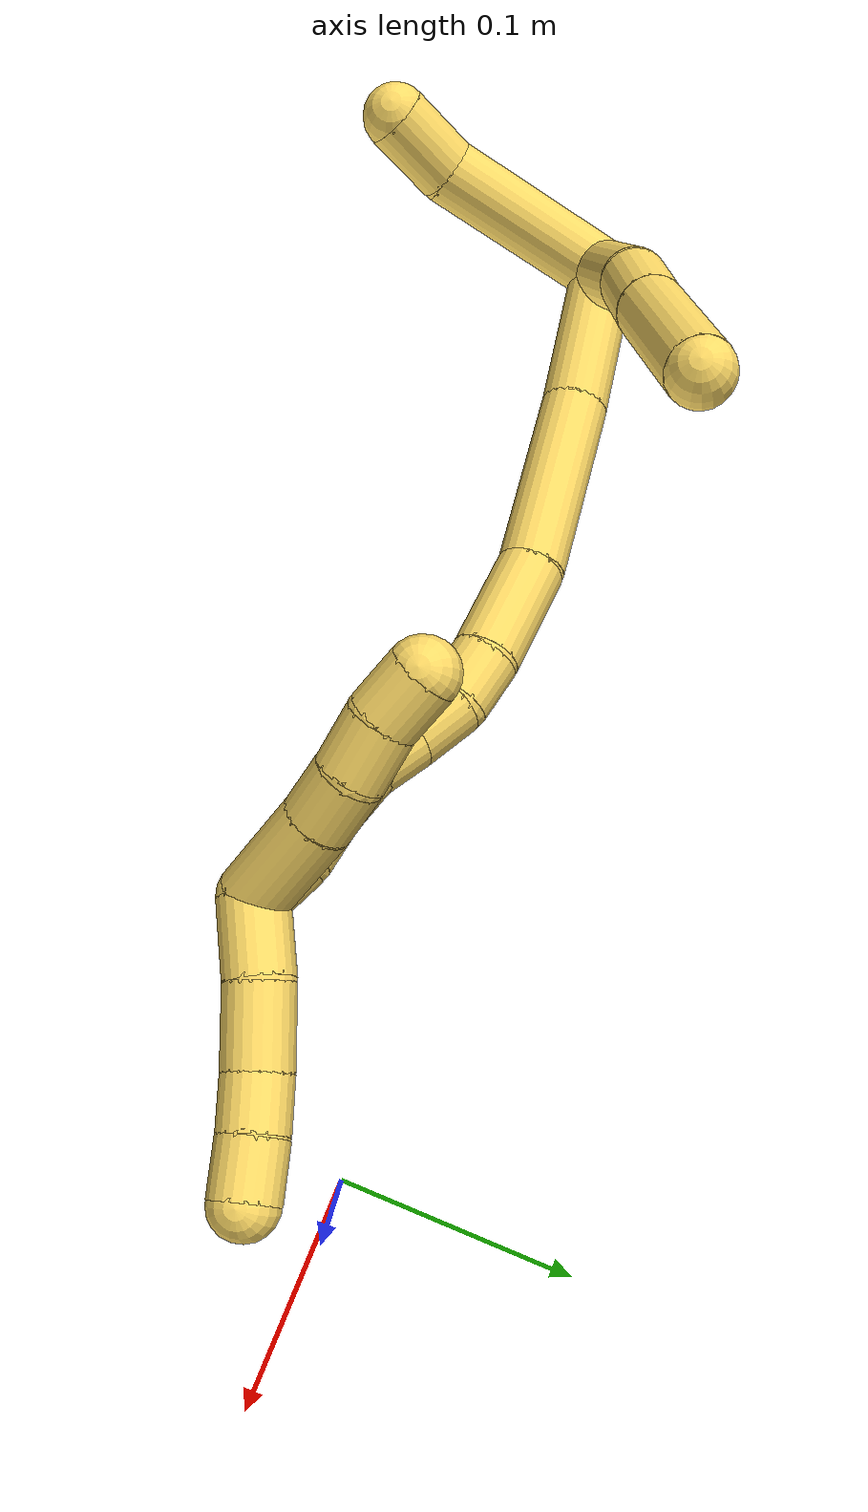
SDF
<sdf version="1.7">
 <world name="default">
  <model name="5">
   <static>0</static>
   <link name="5">
    <collision name="collision-cylinder-e_1_2_8">
     <pose>0.014461 -0.001479 -0.027099 3.08707 0.489576 2.92413</pose>
     <geometry><cylinder><radius>0.0125</radius><length>0.061504</length></cylinder></geometry>
     <surface>
      <friction><ode><mu>1.16</mu><mu2>1.16</mu2><slip1>0</slip1><slip2>0</slip2></ode></friction>
      <contact><ode><kp>1e+06</kp><kd>1</kd><max_vel>0</max_vel><min_depth>0.001</min_depth></ode></contact>
     </surface>
    </collision>
    <visual name="visual-cylinder-e_1_2_8">
     <pose>0.014461 -0.001479 -0.027099 3.08707 0.489576 2.92413</pose>
     <geometry><cylinder><radius>0.0125</radius><length>0.061504</length></cylinder></geometry>
     <material><ambient>1 0.858824 0.4 1</ambient></material>
    </visual>
    <collision name="collision-cylinder-e_2_8_9">
     <pose>0.038945 -0.002596 -0.06533 -3.10909 0.73279 -3.05692</pose>
     <geometry><cylinder><radius>0.0125</radius><length>0.029967</length></cylinder></geometry>
     <surface>
      <friction><ode><mu>1.16</mu><mu2>1.16</mu2><slip1>0</slip1><slip2>0</slip2></ode></friction>
      <contact><ode><kp>1e+06</kp><kd>1</kd><max_vel>0</max_vel><min_depth>0.001</min_depth></ode></contact>
     </surface>
    </collision>
    <visual name="visual-cylinder-e_2_8_9">
     <pose>0.038945 -0.002596 -0.06533 -3.10909 0.73279 -3.05692</pose>
     <geometry><cylinder><radius>0.0125</radius><length>0.029967</length></cylinder></geometry>
     <material><ambient>1 0.858824 0.4 1</ambient></material>
    </visual>
    <collision name="collision-cylinder-e_3_9_6">
     <pose>0.06909 -0.003161 -0.09769 3.09798 0.75816 3.03219</pose>
     <geometry><cylinder><radius>0.0125</radius><length>0.058529</length></cylinder></geometry>
     <surface>
      <friction><ode><mu>1.16</mu><mu2>1.16</mu2><slip1>0</slip1><slip2>0</slip2></ode></friction>
      <contact><ode><kp>1e+06</kp><kd>1</kd><max_vel>0</max_vel><min_depth>0.001</min_depth></ode></contact>
     </surface>
    </collision>
    <visual name="visual-cylinder-e_3_9_6">
     <pose>0.06909 -0.003161 -0.09769 3.09798 0.75816 3.03219</pose>
     <geometry><cylinder><radius>0.0125</radius><length>0.058529</length></cylinder></geometry>
     <material><ambient>1 0.858824 0.4 1</ambient></material>
    </visual>
    <collision name="collision-cylinder-e_1_2_10">
     <pose>-0.024351 0.022258 -0.014555 -2.14993 -0.741373 1.2461</pose>
     <geometry><cylinder><radius>0.0125</radius><length>0.072118</length></cylinder></geometry>
     <surface>
      <friction><ode><mu>1.16</mu><mu2>1.16</mu2><slip1>0</slip1><slip2>0</slip2></ode></friction>
      <contact><ode><kp>1e+06</kp><kd>1</kd><max_vel>0</max_vel><min_depth>0.001</min_depth></ode></contact>
     </surface>
    </collision>
    <visual name="visual-cylinder-e_1_2_10">
     <pose>-0.024351 0.022258 -0.014555 -2.14993 -0.741373 1.2461</pose>
     <geometry><cylinder><radius>0.0125</radius><length>0.072118</length></cylinder></geometry>
     <material><ambient>1 0.858824 0.4 1</ambient></material>
    </visual>
    <collision name="collision-cylinder-e_2_10_5">
     <pose>-0.058349 0.050426 -0.037257 -2.51407 -0.76431 1.7832</pose>
     <geometry><cylinder><radius>0.0125</radius><length>0.027882</length></cylinder></geometry>
     <surface>
      <friction><ode><mu>1.16</mu><mu2>1.16</mu2><slip1>0</slip1><slip2>0</slip2></ode></friction>
      <contact><ode><kp>1e+06</kp><kd>1</kd><max_vel>0</max_vel><min_depth>0.001</min_depth></ode></contact>
     </surface>
    </collision>
    <visual name="visual-cylinder-e_2_10_5">
     <pose>-0.058349 0.050426 -0.037257 -2.51407 -0.76431 1.7832</pose>
     <geometry><cylinder><radius>0.0125</radius><length>0.027882</length></cylinder></geometry>
     <material><ambient>1 0.858824 0.4 1</ambient></material>
    </visual>
    <collision name="collision-cylinder-e_1_2_11">
     <pose>0.026166 0.015204 -0.007874 -2.04863 0.991357 -1.45332</pose>
     <geometry><cylinder><radius>0.0125</radius><length>0.06254</length></cylinder></geometry>
     <surface>
      <friction><ode><mu>1.16</mu><mu2>1.16</mu2><slip1>0</slip1><slip2>0</slip2></ode></friction>
      <contact><ode><kp>1e+06</kp><kd>1</kd><max_vel>0</max_vel><min_depth>0.001</min_depth></ode></contact>
     </surface>
    </collision>
    <visual name="visual-cylinder-e_1_2_11">
     <pose>0.026166 0.015204 -0.007874 -2.04863 0.991357 -1.45332</pose>
     <geometry><cylinder><radius>0.0125</radius><length>0.06254</length></cylinder></geometry>
     <material><ambient>1 0.858824 0.4 1</ambient></material>
    </visual>
    <collision name="collision-cylinder-e_2_11_12">
     <pose>0.081749 0.048922 -0.0276 -2.14026 0.929032 -1.48293</pose>
     <geometry><cylinder><radius>0.0125</radius><length>0.073447</length></cylinder></geometry>
     <surface>
      <friction><ode><mu>1.16</mu><mu2>1.16</mu2><slip1>0</slip1><slip2>0</slip2></ode></friction>
      <contact><ode><kp>1e+06</kp><kd>1</kd><max_vel>0</max_vel><min_depth>0.001</min_depth></ode></contact>
     </surface>
    </collision>
    <visual name="visual-cylinder-e_2_11_12">
     <pose>0.081749 0.048922 -0.0276 -2.14026 0.929032 -1.48293</pose>
     <geometry><cylinder><radius>0.0125</radius><length>0.073447</length></cylinder></geometry>
     <material><ambient>1 0.858824 0.4 1</ambient></material>
    </visual>
    <collision name="collision-cylinder-e_3_12_13">
     <pose>0.125232 0.080481 -0.047337 -2.11439 0.745308 -1.21203</pose>
     <geometry><cylinder><radius>0.0125</radius><length>0.041481</length></cylinder></geometry>
     <surface>
      <friction><ode><mu>1.16</mu><mu2>1.16</mu2><slip1>0</slip1><slip2>0</slip2></ode></friction>
      <contact><ode><kp>1e+06</kp><kd>1</kd><max_vel>0</max_vel><min_depth>0.001</min_depth></ode></contact>
     </surface>
    </collision>
    <visual name="visual-cylinder-e_3_12_13">
     <pose>0.125232 0.080481 -0.047337 -2.11439 0.745308 -1.21203</pose>
     <geometry><cylinder><radius>0.0125</radius><length>0.041481</length></cylinder></geometry>
     <material><ambient>1 0.858824 0.4 1</ambient></material>
    </visual>
    <collision name="collision-cylinder-e_4_13_14">
     <pose>0.145372 0.10107 -0.058246 -1.95227 0.641674 -0.913421</pose>
     <geometry><cylinder><radius>0.0125</radius><length>0.020294</length></cylinder></geometry>
     <surface>
      <friction><ode><mu>1.16</mu><mu2>1.16</mu2><slip1>0</slip1><slip2>0</slip2></ode></friction>
      <contact><ode><kp>1e+06</kp><kd>1</kd><max_vel>0</max_vel><min_depth>0.001</min_depth></ode></contact>
     </surface>
    </collision>
    <visual name="visual-cylinder-e_4_13_14">
     <pose>0.145372 0.10107 -0.058246 -1.95227 0.641674 -0.913421</pose>
     <geometry><cylinder><radius>0.0125</radius><length>0.020294</length></cylinder></geometry>
     <material><ambient>1 0.858824 0.4 1</ambient></material>
    </visual>
    <collision name="collision-cylinder-e_5_14_15">
     <pose>0.155108 0.118395 -0.064369 -1.87742 0.342972 -0.464452</pose>
     <geometry><cylinder><radius>0.0125</radius><length>0.021787</length></cylinder></geometry>
     <surface>
      <friction><ode><mu>1.16</mu><mu2>1.16</mu2><slip1>0</slip1><slip2>0</slip2></ode></friction>
      <contact><ode><kp>1e+06</kp><kd>1</kd><max_vel>0</max_vel><min_depth>0.001</min_depth></ode></contact>
     </surface>
    </collision>
    <visual name="visual-cylinder-e_5_14_15">
     <pose>0.155108 0.118395 -0.064369 -1.87742 0.342972 -0.464452</pose>
     <geometry><cylinder><radius>0.0125</radius><length>0.021787</length></cylinder></geometry>
     <material><ambient>1 0.858824 0.4 1</ambient></material>
    </visual>
    <collision name="collision-cylinder-e_6_15_16">
     <pose>0.161794 0.136358 -0.072495 -2.12196 0.304907 -0.53636</pose>
     <geometry><cylinder><radius>0.0125</radius><length>0.020139</length></cylinder></geometry>
     <surface>
      <friction><ode><mu>1.16</mu><mu2>1.16</mu2><slip1>0</slip1><slip2>0</slip2></ode></friction>
      <contact><ode><kp>1e+06</kp><kd>1</kd><max_vel>0</max_vel><min_depth>0.001</min_depth></ode></contact>
     </surface>
    </collision>
    <visual name="visual-cylinder-e_6_15_16">
     <pose>0.161794 0.136358 -0.072495 -2.12196 0.304907 -0.53636</pose>
     <geometry><cylinder><radius>0.0125</radius><length>0.020139</length></cylinder></geometry>
     <material><ambient>1 0.858824 0.4 1</ambient></material>
    </visual>
    <collision name="collision-cylinder-e_7_16_17">
     <pose>0.170085 0.152179 -0.081575 -2.05836 0.547211 -0.872933</pose>
     <geometry><cylinder><radius>0.0125</radius><length>0.020247</length></cylinder></geometry>
     <surface>
      <friction><ode><mu>1.16</mu><mu2>1.16</mu2><slip1>0</slip1><slip2>0</slip2></ode></friction>
      <contact><ode><kp>1e+06</kp><kd>1</kd><max_vel>0</max_vel><min_depth>0.001</min_depth></ode></contact>
     </surface>
    </collision>
    <visual name="visual-cylinder-e_7_16_17">
     <pose>0.170085 0.152179 -0.081575 -2.05836 0.547211 -0.872933</pose>
     <geometry><cylinder><radius>0.0125</radius><length>0.020247</length></cylinder></geometry>
     <material><ambient>1 0.858824 0.4 1</ambient></material>
    </visual>
    <collision name="collision-cylinder-e_8_17_18">
     <pose>0.18156 0.16683 -0.089196 -2.04165 0.667862 -1.02991</pose>
     <geometry><cylinder><radius>0.0125</radius><length>0.020048</length></cylinder></geometry>
     <surface>
      <friction><ode><mu>1.16</mu><mu2>1.16</mu2><slip1>0</slip1><slip2>0</slip2></ode></friction>
      <contact><ode><kp>1e+06</kp><kd>1</kd><max_vel>0</max_vel><min_depth>0.001</min_depth></ode></contact>
     </surface>
    </collision>
    <visual name="visual-cylinder-e_8_17_18">
     <pose>0.18156 0.16683 -0.089196 -2.04165 0.667862 -1.02991</pose>
     <geometry><cylinder><radius>0.0125</radius><length>0.020048</length></cylinder></geometry>
     <material><ambient>1 0.858824 0.4 1</ambient></material>
    </visual>
    <collision name="collision-cylinder-e_9_18_1">
     <pose>0.191848 0.182823 -0.094469 -1.75825 0.419894 -0.503684</pose>
     <geometry><cylinder><radius>0.0125</radius><length>0.020017</length></cylinder></geometry>
     <surface>
      <friction><ode><mu>1.16</mu><mu2>1.16</mu2><slip1>0</slip1><slip2>0</slip2></ode></friction>
      <contact><ode><kp>1e+06</kp><kd>1</kd><max_vel>0</max_vel><min_depth>0.001</min_depth></ode></contact>
     </surface>
    </collision>
    <visual name="visual-cylinder-e_9_18_1">
     <pose>0.191848 0.182823 -0.094469 -1.75825 0.419894 -0.503684</pose>
     <geometry><cylinder><radius>0.0125</radius><length>0.020017</length></cylinder></geometry>
     <material><ambient>1 0.858824 0.4 1</ambient></material>
    </visual>
    <collision name="collision-cylinder-e_1_1_19">
     <pose>0.209727 0.194889 -0.098243 -2.16167 1.30772 -1.92554</pose>
     <geometry><cylinder><radius>0.0125</radius><length>0.028581</length></cylinder></geometry>
     <surface>
      <friction><ode><mu>1.16</mu><mu2>1.16</mu2><slip1>0</slip1><slip2>0</slip2></ode></friction>
      <contact><ode><kp>1e+06</kp><kd>1</kd><max_vel>0</max_vel><min_depth>0.001</min_depth></ode></contact>
     </surface>
    </collision>
    <visual name="visual-cylinder-e_1_1_19">
     <pose>0.209727 0.194889 -0.098243 -2.16167 1.30772 -1.92554</pose>
     <geometry><cylinder><radius>0.0125</radius><length>0.028581</length></cylinder></geometry>
     <material><ambient>1 0.858824 0.4 1</ambient></material>
    </visual>
    <collision name="collision-cylinder-e_2_19_20">
     <pose>0.237631 0.20297 -0.101091 -1.72524 1.22668 -1.37599</pose>
     <geometry><cylinder><radius>0.0125</radius><length>0.029969</length></cylinder></geometry>
     <surface>
      <friction><ode><mu>1.16</mu><mu2>1.16</mu2><slip1>0</slip1><slip2>0</slip2></ode></friction>
      <contact><ode><kp>1e+06</kp><kd>1</kd><max_vel>0</max_vel><min_depth>0.001</min_depth></ode></contact>
     </surface>
    </collision>
    <visual name="visual-cylinder-e_2_19_20">
     <pose>0.237631 0.20297 -0.101091 -1.72524 1.22668 -1.37599</pose>
     <geometry><cylinder><radius>0.0125</radius><length>0.029969</length></cylinder></geometry>
     <material><ambient>1 0.858824 0.4 1</ambient></material>
    </visual>
    <collision name="collision-cylinder-e_3_20_21">
     <pose>0.261067 0.211479 -0.103771 -2.06696 1.16608 -1.67226</pose>
     <geometry><cylinder><radius>0.0125</radius><length>0.020298</length></cylinder></geometry>
     <surface>
      <friction><ode><mu>1.16</mu><mu2>1.16</mu2><slip1>0</slip1><slip2>0</slip2></ode></friction>
      <contact><ode><kp>1e+06</kp><kd>1</kd><max_vel>0</max_vel><min_depth>0.001</min_depth></ode></contact>
     </surface>
    </collision>
    <visual name="visual-cylinder-e_3_20_21">
     <pose>0.261067 0.211479 -0.103771 -2.06696 1.16608 -1.67226</pose>
     <geometry><cylinder><radius>0.0125</radius><length>0.020298</length></cylinder></geometry>
     <material><ambient>1 0.858824 0.4 1</ambient></material>
    </visual>
    <collision name="collision-cylinder-e_4_21_4">
     <pose>0.279876 0.219359 -0.107382 -1.94394 1.11152 -1.47672</pose>
     <geometry><cylinder><radius>0.0125</radius><length>0.021152</length></cylinder></geometry>
     <surface>
      <friction><ode><mu>1.16</mu><mu2>1.16</mu2><slip1>0</slip1><slip2>0</slip2></ode></friction>
      <contact><ode><kp>1e+06</kp><kd>1</kd><max_vel>0</max_vel><min_depth>0.001</min_depth></ode></contact>
     </surface>
    </collision>
    <visual name="visual-cylinder-e_4_21_4">
     <pose>0.279876 0.219359 -0.107382 -1.94394 1.11152 -1.47672</pose>
     <geometry><cylinder><radius>0.0125</radius><length>0.021152</length></cylinder></geometry>
     <material><ambient>1 0.858824 0.4 1</ambient></material>
    </visual>
    <collision name="collision-cylinder-e_1_1_22">
     <pose>0.189077 0.176154 -0.104955 2.08224 -0.364695 -0.610224</pose>
     <geometry><cylinder><radius>0.0125</radius><length>0.038417</length></cylinder></geometry>
     <surface>
      <friction><ode><mu>1.16</mu><mu2>1.16</mu2><slip1>0</slip1><slip2>0</slip2></ode></friction>
      <contact><ode><kp>1e+06</kp><kd>1</kd><max_vel>0</max_vel><min_depth>0.001</min_depth></ode></contact>
     </surface>
    </collision>
    <visual name="visual-cylinder-e_1_1_22">
     <pose>0.189077 0.176154 -0.104955 2.08224 -0.364695 -0.610224</pose>
     <geometry><cylinder><radius>0.0125</radius><length>0.038417</length></cylinder></geometry>
     <material><ambient>1 0.858824 0.4 1</ambient></material>
    </visual>
    <collision name="collision-cylinder-e_2_22_23">
     <pose>0.177885 0.152615 -0.1185 2.11381 -0.440245 -0.754764</pose>
     <geometry><cylinder><radius>0.0125</radius><length>0.020372</length></cylinder></geometry>
     <surface>
      <friction><ode><mu>1.16</mu><mu2>1.16</mu2><slip1>0</slip1><slip2>0</slip2></ode></friction>
      <contact><ode><kp>1e+06</kp><kd>1</kd><max_vel>0</max_vel><min_depth>0.001</min_depth></ode></contact>
     </surface>
    </collision>
    <visual name="visual-cylinder-e_2_22_23">
     <pose>0.177885 0.152615 -0.1185 2.11381 -0.440245 -0.754764</pose>
     <geometry><cylinder><radius>0.0125</radius><length>0.020372</length></cylinder></geometry>
     <material><ambient>1 0.858824 0.4 1</ambient></material>
    </visual>
    <collision name="collision-cylinder-e_3_23_24">
     <pose>0.167731 0.136658 -0.126771 1.98105 -0.583836 -0.859623</pose>
     <geometry><cylinder><radius>0.0125</radius><length>0.021091</length></cylinder></geometry>
     <surface>
      <friction><ode><mu>1.16</mu><mu2>1.16</mu2><slip1>0</slip1><slip2>0</slip2></ode></friction>
      <contact><ode><kp>1e+06</kp><kd>1</kd><max_vel>0</max_vel><min_depth>0.001</min_depth></ode></contact>
     </surface>
    </collision>
    <visual name="visual-cylinder-e_3_23_24">
     <pose>0.167731 0.136658 -0.126771 1.98105 -0.583836 -0.859623</pose>
     <geometry><cylinder><radius>0.0125</radius><length>0.021091</length></cylinder></geometry>
     <material><ambient>1 0.858824 0.4 1</ambient></material>
    </visual>
    <collision name="collision-cylinder-e_4_24_3">
     <pose>0.157778 0.119851 -0.133057 1.87853 -0.42414 -0.572534</pose>
     <geometry><cylinder><radius>0.0125</radius><length>0.02012</length></cylinder></geometry>
     <surface>
      <friction><ode><mu>1.16</mu><mu2>1.16</mu2><slip1>0</slip1><slip2>0</slip2></ode></friction>
      <contact><ode><kp>1e+06</kp><kd>1</kd><max_vel>0</max_vel><min_depth>0.001</min_depth></ode></contact>
     </surface>
    </collision>
    <visual name="visual-cylinder-e_4_24_3">
     <pose>0.157778 0.119851 -0.133057 1.87853 -0.42414 -0.572534</pose>
     <geometry><cylinder><radius>0.0125</radius><length>0.02012</length></cylinder></geometry>
     <material><ambient>1 0.858824 0.4 1</ambient></material>
    </visual>
    <collision name="collision-sphere-3">
     <pose>0.153638 0.111113 -0.135834 0 -0 0</pose>
     <geometry><sphere><radius>0.0125</radius></sphere></geometry>
     <surface>
      <friction><ode><mu>1.16</mu><mu2>1.16</mu2><slip1>0</slip1><slip2>0</slip2></ode></friction>
      <contact><ode><kp>1e+06</kp><kd>1</kd><max_vel>0</max_vel><min_depth>0.001</min_depth></ode></contact>
     </surface>
    </collision>
    <visual name="visual-sphere-3">
     <pose>0.153638 0.111113 -0.135834 0 -0 0</pose>
     <geometry><sphere><radius>0.0125</radius></sphere></geometry>
     <material><ambient>1 0.858824 0.4 1</ambient></material>
    </visual>
    <collision name="collision-sphere-24">
     <pose>0.161918 0.128589 -0.13028 0 -0 0</pose>
     <geometry><sphere><radius>0.0125</radius></sphere></geometry>
     <surface>
      <friction><ode><mu>1.16</mu><mu2>1.16</mu2><slip1>0</slip1><slip2>0</slip2></ode></friction>
      <contact><ode><kp>1e+06</kp><kd>1</kd><max_vel>0</max_vel><min_depth>0.001</min_depth></ode></contact>
     </surface>
    </collision>
    <visual name="visual-sphere-24">
     <pose>0.161918 0.128589 -0.13028 0 -0 0</pose>
     <geometry><sphere><radius>0.0125</radius></sphere></geometry>
     <material><ambient>1 0.858824 0.4 1</ambient></material>
    </visual>
    <collision name="collision-sphere-23">
     <pose>0.173544 0.144726 -0.123261 0 -0 0</pose>
     <geometry><sphere><radius>0.0125</radius></sphere></geometry>
     <surface>
      <friction><ode><mu>1.16</mu><mu2>1.16</mu2><slip1>0</slip1><slip2>0</slip2></ode></friction>
      <contact><ode><kp>1e+06</kp><kd>1</kd><max_vel>0</max_vel><min_depth>0.001</min_depth></ode></contact>
     </surface>
    </collision>
    <visual name="visual-sphere-23">
     <pose>0.173544 0.144726 -0.123261 0 -0 0</pose>
     <geometry><sphere><radius>0.0125</radius></sphere></geometry>
     <material><ambient>1 0.858824 0.4 1</ambient></material>
    </visual>
    <collision name="collision-sphere-22">
     <pose>0.182226 0.160505 -0.113738 0 -0 0</pose>
     <geometry><sphere><radius>0.0125</radius></sphere></geometry>
     <surface>
      <friction><ode><mu>1.16</mu><mu2>1.16</mu2><slip1>0</slip1><slip2>0</slip2></ode></friction>
      <contact><ode><kp>1e+06</kp><kd>1</kd><max_vel>0</max_vel><min_depth>0.001</min_depth></ode></contact>
     </surface>
    </collision>
    <visual name="visual-sphere-22">
     <pose>0.182226 0.160505 -0.113738 0 -0 0</pose>
     <geometry><sphere><radius>0.0125</radius></sphere></geometry>
     <material><ambient>1 0.858824 0.4 1</ambient></material>
    </visual>
    <collision name="collision-sphere-4">
     <pose>0.289356 0.223725 -0.109091 0 -0 0</pose>
     <geometry><sphere><radius>0.0125</radius></sphere></geometry>
     <surface>
      <friction><ode><mu>1.16</mu><mu2>1.16</mu2><slip1>0</slip1><slip2>0</slip2></ode></friction>
      <contact><ode><kp>1e+06</kp><kd>1</kd><max_vel>0</max_vel><min_depth>0.001</min_depth></ode></contact>
     </surface>
    </collision>
    <visual name="visual-sphere-4">
     <pose>0.289356 0.223725 -0.109091 0 -0 0</pose>
     <geometry><sphere><radius>0.0125</radius></sphere></geometry>
     <material><ambient>1 0.858824 0.4 1</ambient></material>
    </visual>
    <collision name="collision-sphere-21">
     <pose>0.270396 0.214994 -0.105673 0 -0 0</pose>
     <geometry><sphere><radius>0.0125</radius></sphere></geometry>
     <surface>
      <friction><ode><mu>1.16</mu><mu2>1.16</mu2><slip1>0</slip1><slip2>0</slip2></ode></friction>
      <contact><ode><kp>1e+06</kp><kd>1</kd><max_vel>0</max_vel><min_depth>0.001</min_depth></ode></contact>
     </surface>
    </collision>
    <visual name="visual-sphere-21">
     <pose>0.270396 0.214994 -0.105673 0 -0 0</pose>
     <geometry><sphere><radius>0.0125</radius></sphere></geometry>
     <material><ambient>1 0.858824 0.4 1</ambient></material>
    </visual>
    <collision name="collision-sphere-20">
     <pose>0.251737 0.207965 -0.101868 0 -0 0</pose>
     <geometry><sphere><radius>0.0125</radius></sphere></geometry>
     <surface>
      <friction><ode><mu>1.16</mu><mu2>1.16</mu2><slip1>0</slip1><slip2>0</slip2></ode></friction>
      <contact><ode><kp>1e+06</kp><kd>1</kd><max_vel>0</max_vel><min_depth>0.001</min_depth></ode></contact>
     </surface>
    </collision>
    <visual name="visual-sphere-20">
     <pose>0.251737 0.207965 -0.101868 0 -0 0</pose>
     <geometry><sphere><radius>0.0125</radius></sphere></geometry>
     <material><ambient>1 0.858824 0.4 1</ambient></material>
    </visual>
    <collision name="collision-sphere-5">
     <pose>-0.067997 0.056334 -0.045403 0 -0 0</pose>
     <geometry><sphere><radius>0.0125</radius></sphere></geometry>
     <surface>
      <friction><ode><mu>1.16</mu><mu2>1.16</mu2><slip1>0</slip1><slip2>0</slip2></ode></friction>
      <contact><ode><kp>1e+06</kp><kd>1</kd><max_vel>0</max_vel><min_depth>0.001</min_depth></ode></contact>
     </surface>
    </collision>
    <visual name="visual-sphere-5">
     <pose>-0.067997 0.056334 -0.045403 0 -0 0</pose>
     <geometry><sphere><radius>0.0125</radius></sphere></geometry>
     <material><ambient>1 0.858824 0.4 1</ambient></material>
    </visual>
    <collision name="collision-sphere-10">
     <pose>-0.048701 0.044517 -0.029111 0 -0 0</pose>
     <geometry><sphere><radius>0.0125</radius></sphere></geometry>
     <surface>
      <friction><ode><mu>1.16</mu><mu2>1.16</mu2><slip1>0</slip1><slip2>0</slip2></ode></friction>
      <contact><ode><kp>1e+06</kp><kd>1</kd><max_vel>0</max_vel><min_depth>0.001</min_depth></ode></contact>
     </surface>
    </collision>
    <visual name="visual-sphere-10">
     <pose>-0.048701 0.044517 -0.029111 0 -0 0</pose>
     <geometry><sphere><radius>0.0125</radius></sphere></geometry>
     <material><ambient>1 0.858824 0.4 1</ambient></material>
    </visual>
    <collision name="collision-sphere-6">
     <pose>0.089212 -0.004087 -0.118919 0 -0 0</pose>
     <geometry><sphere><radius>0.0125</radius></sphere></geometry>
     <surface>
      <friction><ode><mu>1.16</mu><mu2>1.16</mu2><slip1>0</slip1><slip2>0</slip2></ode></friction>
      <contact><ode><kp>1e+06</kp><kd>1</kd><max_vel>0</max_vel><min_depth>0.001</min_depth></ode></contact>
     </surface>
    </collision>
    <visual name="visual-sphere-6">
     <pose>0.089212 -0.004087 -0.118919 0 -0 0</pose>
     <geometry><sphere><radius>0.0125</radius></sphere></geometry>
     <material><ambient>1 0.858824 0.4 1</ambient></material>
    </visual>
    <collision name="collision-sphere-9">
     <pose>0.048968 -0.002234 -0.076461 0 -0 0</pose>
     <geometry><sphere><radius>0.0125</radius></sphere></geometry>
     <surface>
      <friction><ode><mu>1.16</mu><mu2>1.16</mu2><slip1>0</slip1><slip2>0</slip2></ode></friction>
      <contact><ode><kp>1e+06</kp><kd>1</kd><max_vel>0</max_vel><min_depth>0.001</min_depth></ode></contact>
     </surface>
    </collision>
    <visual name="visual-sphere-9">
     <pose>0.048968 -0.002234 -0.076461 0 -0 0</pose>
     <geometry><sphere><radius>0.0125</radius></sphere></geometry>
     <material><ambient>1 0.858824 0.4 1</ambient></material>
    </visual>
    <collision name="collision-sphere-2">
     <geometry><sphere><radius>0.0125</radius></sphere></geometry>
     <surface>
      <friction><ode><mu>1.16</mu><mu2>1.16</mu2><slip1>0</slip1><slip2>0</slip2></ode></friction>
      <contact><ode><kp>1e+06</kp><kd>1</kd><max_vel>0</max_vel><min_depth>0.001</min_depth></ode></contact>
     </surface>
    </collision>
    <visual name="visual-sphere-2">
     <geometry><sphere><radius>0.0125</radius></sphere></geometry>
     <material><ambient>1 0.858824 0.4 1</ambient></material>
    </visual>
    <collision name="collision-sphere-19">
     <pose>0.223525 0.197975 -0.100313 0 -0 0</pose>
     <geometry><sphere><radius>0.0125</radius></sphere></geometry>
     <surface>
      <friction><ode><mu>1.16</mu><mu2>1.16</mu2><slip1>0</slip1><slip2>0</slip2></ode></friction>
      <contact><ode><kp>1e+06</kp><kd>1</kd><max_vel>0</max_vel><min_depth>0.001</min_depth></ode></contact>
     </surface>
    </collision>
    <visual name="visual-sphere-19">
     <pose>0.223525 0.197975 -0.100313 0 -0 0</pose>
     <geometry><sphere><radius>0.0125</radius></sphere></geometry>
     <material><ambient>1 0.858824 0.4 1</ambient></material>
    </visual>
    <collision name="collision-sphere-8">
     <pose>0.028922 -0.002958 -0.054199 0 -0 0</pose>
     <geometry><sphere><radius>0.0125</radius></sphere></geometry>
     <surface>
      <friction><ode><mu>1.16</mu><mu2>1.16</mu2><slip1>0</slip1><slip2>0</slip2></ode></friction>
      <contact><ode><kp>1e+06</kp><kd>1</kd><max_vel>0</max_vel><min_depth>0.001</min_depth></ode></contact>
     </surface>
    </collision>
    <visual name="visual-sphere-8">
     <pose>0.028922 -0.002958 -0.054199 0 -0 0</pose>
     <geometry><sphere><radius>0.0125</radius></sphere></geometry>
     <material><ambient>1 0.858824 0.4 1</ambient></material>
    </visual>
    <collision name="collision-sphere-11">
     <pose>0.052332 0.030409 -0.015747 0 -0 0</pose>
     <geometry><sphere><radius>0.0125</radius></sphere></geometry>
     <surface>
      <friction><ode><mu>1.16</mu><mu2>1.16</mu2><slip1>0</slip1><slip2>0</slip2></ode></friction>
      <contact><ode><kp>1e+06</kp><kd>1</kd><max_vel>0</max_vel><min_depth>0.001</min_depth></ode></contact>
     </surface>
    </collision>
    <visual name="visual-sphere-11">
     <pose>0.052332 0.030409 -0.015747 0 -0 0</pose>
     <geometry><sphere><radius>0.0125</radius></sphere></geometry>
     <material><ambient>1 0.858824 0.4 1</ambient></material>
    </visual>
    <collision name="collision-sphere-12">
     <pose>0.111166 0.067436 -0.039453 0 -0 0</pose>
     <geometry><sphere><radius>0.0125</radius></sphere></geometry>
     <surface>
      <friction><ode><mu>1.16</mu><mu2>1.16</mu2><slip1>0</slip1><slip2>0</slip2></ode></friction>
      <contact><ode><kp>1e+06</kp><kd>1</kd><max_vel>0</max_vel><min_depth>0.001</min_depth></ode></contact>
     </surface>
    </collision>
    <visual name="visual-sphere-12">
     <pose>0.111166 0.067436 -0.039453 0 -0 0</pose>
     <geometry><sphere><radius>0.0125</radius></sphere></geometry>
     <material><ambient>1 0.858824 0.4 1</ambient></material>
    </visual>
    <collision name="collision-sphere-13">
     <pose>0.139298 0.093526 -0.05522 0 -0 0</pose>
     <geometry><sphere><radius>0.0125</radius></sphere></geometry>
     <surface>
      <friction><ode><mu>1.16</mu><mu2>1.16</mu2><slip1>0</slip1><slip2>0</slip2></ode></friction>
      <contact><ode><kp>1e+06</kp><kd>1</kd><max_vel>0</max_vel><min_depth>0.001</min_depth></ode></contact>
     </surface>
    </collision>
    <visual name="visual-sphere-13">
     <pose>0.139298 0.093526 -0.05522 0 -0 0</pose>
     <geometry><sphere><radius>0.0125</radius></sphere></geometry>
     <material><ambient>1 0.858824 0.4 1</ambient></material>
    </visual>
    <collision name="collision-sphere-14">
     <pose>0.151445 0.108615 -0.061272 0 -0 0</pose>
     <geometry><sphere><radius>0.0125</radius></sphere></geometry>
     <surface>
      <friction><ode><mu>1.16</mu><mu2>1.16</mu2><slip1>0</slip1><slip2>0</slip2></ode></friction>
      <contact><ode><kp>1e+06</kp><kd>1</kd><max_vel>0</max_vel><min_depth>0.001</min_depth></ode></contact>
     </surface>
    </collision>
    <visual name="visual-sphere-14">
     <pose>0.151445 0.108615 -0.061272 0 -0 0</pose>
     <geometry><sphere><radius>0.0125</radius></sphere></geometry>
     <material><ambient>1 0.858824 0.4 1</ambient></material>
    </visual>
    <collision name="collision-sphere-15">
     <pose>0.158772 0.128176 -0.067466 0 -0 0</pose>
     <geometry><sphere><radius>0.0125</radius></sphere></geometry>
     <surface>
      <friction><ode><mu>1.16</mu><mu2>1.16</mu2><slip1>0</slip1><slip2>0</slip2></ode></friction>
      <contact><ode><kp>1e+06</kp><kd>1</kd><max_vel>0</max_vel><min_depth>0.001</min_depth></ode></contact>
     </surface>
    </collision>
    <visual name="visual-sphere-15">
     <pose>0.158772 0.128176 -0.067466 0 -0 0</pose>
     <geometry><sphere><radius>0.0125</radius></sphere></geometry>
     <material><ambient>1 0.858824 0.4 1</ambient></material>
    </visual>
    <collision name="collision-sphere-16">
     <pose>0.164817 0.144541 -0.077525 0 -0 0</pose>
     <geometry><sphere><radius>0.0125</radius></sphere></geometry>
     <surface>
      <friction><ode><mu>1.16</mu><mu2>1.16</mu2><slip1>0</slip1><slip2>0</slip2></ode></friction>
      <contact><ode><kp>1e+06</kp><kd>1</kd><max_vel>0</max_vel><min_depth>0.001</min_depth></ode></contact>
     </surface>
    </collision>
    <visual name="visual-sphere-16">
     <pose>0.164817 0.144541 -0.077525 0 -0 0</pose>
     <geometry><sphere><radius>0.0125</radius></sphere></geometry>
     <material><ambient>1 0.858824 0.4 1</ambient></material>
    </visual>
    <collision name="collision-sphere-17">
     <pose>0.175352 0.159817 -0.085625 0 -0 0</pose>
     <geometry><sphere><radius>0.0125</radius></sphere></geometry>
     <surface>
      <friction><ode><mu>1.16</mu><mu2>1.16</mu2><slip1>0</slip1><slip2>0</slip2></ode></friction>
      <contact><ode><kp>1e+06</kp><kd>1</kd><max_vel>0</max_vel><min_depth>0.001</min_depth></ode></contact>
     </surface>
    </collision>
    <visual name="visual-sphere-17">
     <pose>0.175352 0.159817 -0.085625 0 -0 0</pose>
     <geometry><sphere><radius>0.0125</radius></sphere></geometry>
     <material><ambient>1 0.858824 0.4 1</ambient></material>
    </visual>
    <collision name="collision-sphere-18">
     <pose>0.187768 0.173844 -0.092766 0 -0 0</pose>
     <geometry><sphere><radius>0.0125</radius></sphere></geometry>
     <surface>
      <friction><ode><mu>1.16</mu><mu2>1.16</mu2><slip1>0</slip1><slip2>0</slip2></ode></friction>
      <contact><ode><kp>1e+06</kp><kd>1</kd><max_vel>0</max_vel><min_depth>0.001</min_depth></ode></contact>
     </surface>
    </collision>
    <visual name="visual-sphere-18">
     <pose>0.187768 0.173844 -0.092766 0 -0 0</pose>
     <geometry><sphere><radius>0.0125</radius></sphere></geometry>
     <material><ambient>1 0.858824 0.4 1</ambient></material>
    </visual>
    <collision name="collision-sphere-1">
     <pose>0.195928 0.191802 -0.096172 0 -0 0</pose>
     <geometry><sphere><radius>0.0125</radius></sphere></geometry>
     <surface>
      <friction><ode><mu>1.16</mu><mu2>1.16</mu2><slip1>0</slip1><slip2>0</slip2></ode></friction>
      <contact><ode><kp>1e+06</kp><kd>1</kd><max_vel>0</max_vel><min_depth>0.001</min_depth></ode></contact>
     </surface>
    </collision>
    <visual name="visual-sphere-1">
     <pose>0.195928 0.191802 -0.096172 0 -0 0</pose>
     <geometry><sphere><radius>0.0125</radius></sphere></geometry>
     <material><ambient>1 0.858824 0.4 1</ambient></material>
    </visual>
    <inertial>
     <pose>0.103999 0.08501 -0.063068 0 -0 0</pose>
     <mass>0.75</mass>
     <inertia><ixx>-9e-06</ixx><ixy>0</ixy><ixz>0</ixz><iyy>9.9e-05</iyy><iyz>0</iyz><izz>-0.000143</izz></inertia>
    </inertial>
   </link>
   <pose>-0.372233 -0.043493 0.01173 -3.08123 -0.132318 0.739845</pose>
  </model>
 </world>
</sdf>
